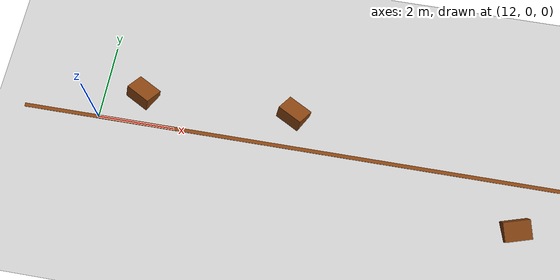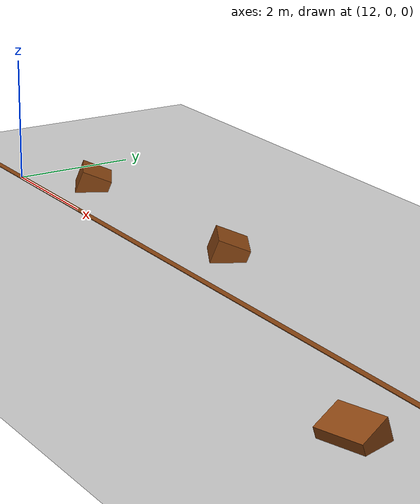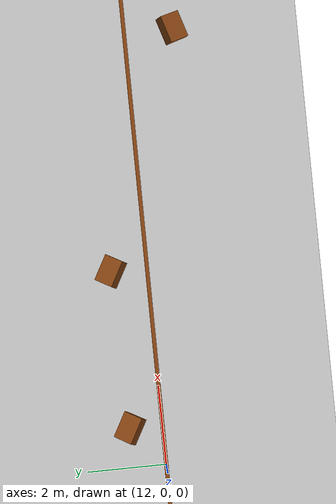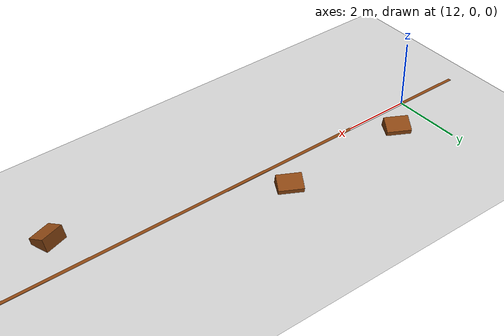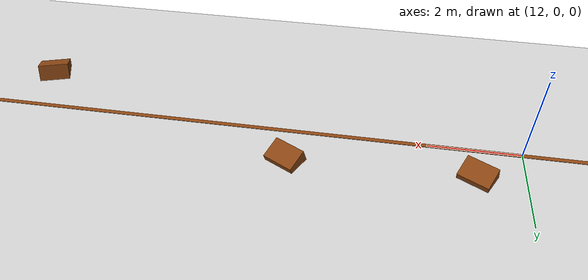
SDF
<sdf version="1.10">
 <world name="land">
  <scene>
   <grid>false</grid>
   <ambient>0.400000006 0.400000006 0.400000006 1</ambient>
   <background>0.699999988 0.699999988 0.699999988 1</background>
   <shadows>true</shadows>
  </scene>
  <physics name="1ms" type="ode">
   <max_step_size>0.0030000000000000001</max_step_size>
   <real_time_update_rate>1000</real_time_update_rate>
   <real_time_factor>1</real_time_factor>
  </physics>
  <plugin name="gz::sim::systems::Physics" filename="gz-sim-physics-system"/>
  <plugin name="gz::sim::systems::UserCommands" filename="gz-sim-user-commands-system"/>
  <plugin name="gz::sim::systems::SceneBroadcaster" filename="gz-sim-scene-broadcaster-system"/>
  <plugin name="gz::sim::systems::Sensors" filename="gz-sim-sensors-system">
   <render_engine>ogre2</render_engine>
  </plugin>
  <plugin name="gz::sim::systems::Imu" filename="gz-sim-imu-system"/>
  <scene>
   <shadows>false</shadows>
   <ambient>0.400000006 0.400000006 0.400000006 1</ambient>
   <background>0.699999988 0.699999988 0.699999988 1</background>
  </scene>
  <physics type="ode">
   <real_time_update_rate>1000</real_time_update_rate>
   <max_step_size>0.001</max_step_size>
   <real_time_factor>1</real_time_factor>
   <ode>
    <solver>
     <type>quick</type>
     <iters>150</iters>
     <precon_iters>0</precon_iters>
     <sor>1.3999999999999999</sor>
     <use_dynamic_moi_rescaling>true</use_dynamic_moi_rescaling>
    </solver>
    <constraints>
     <cfm>1.0000000000000001e-05</cfm>
     <erp>0.20000000000000001</erp>
     <contact_max_correcting_vel>2000</contact_max_correcting_vel>
     <contact_surface_layer>0.01</contact_surface_layer>
    </constraints>
   </ode>
  </physics>
  <gravity>0 0 -9.8000000000000007</gravity>
  <magnetic_field>5.5644999999999998e-06 2.2875799999999999e-05 -4.2388400000000002e-05</magnetic_field>
  <atmosphere type="adiabatic"/>
  <model name="ground_plane">
   <static>true</static>
   <link name="link">
    <collision name="collision">
     <geometry><plane><normal>0 0 1</normal><size>100 100</size></plane></geometry>
     <surface><friction><ode><mu>100</mu><mu2>50</mu2></ode></friction></surface>
    </collision>
    <visual name="visual">
     <geometry><plane><normal>0 0 1</normal><size>100 100</size></plane></geometry>
     <material>
      <ambient>0.800000012 0.800000012 0.800000012 1</ambient>
      <diffuse>0.800000012 0.800000012 0.800000012 1</diffuse>
      <specular>0.800000012 0.800000012 0.800000012 1</specular>
     </material>
    </visual>
    <inertial>
     <mass>1</mass>
     <inertia><ixx>1</ixx><ixy>0</ixy><ixz>0</ixz><iyy>1</iyy><iyz>0</iyz><izz>1</izz></inertia>
    </inertial>
   </link>
  </model>
  <model name="batu1">
   <static>true</static>
   <pose>13 0.80000000000000004 0.01 1.2000000000000002 1.3877787807814457e-16 -0.50000000000000022</pose>
   <link name="link">
    <collision name="collision">
     <geometry><box><size>0.69999999999999996 0.5 0.5</size></box></geometry>
    </collision>
    <visual name="visual">
     <geometry><box><size>0.69999999999999996 0.5 0.5</size></box></geometry>
     <material>
      <ambient>0.540000021 0.270000011 0.0700000003 1</ambient>
      <diffuse>0.540000021 0.270000011 0.0700000003 1</diffuse>
     </material>
    </visual>
    <inertial>
     <mass>1</mass>
     <inertia><ixx>1</ixx><ixy>0</ixy><ixz>0</ixz><iyy>1</iyy><iyz>0</iyz><izz>1</izz></inertia>
    </inertial>
   </link>
  </model>
  <model name="batu2">
   <static>true</static>
   <pose>17 0.90000000000000002 0.01 1.2000000000000002 1.3877787807814457e-16 -0.50000000000000022</pose>
   <link name="link">
    <collision name="collision">
     <geometry><box><size>0.69999999999999996 0.5 0.5</size></box></geometry>
    </collision>
    <visual name="visual">
     <geometry><box><size>0.69999999999999996 0.5 0.5</size></box></geometry>
     <material>
      <ambient>0.540000021 0.270000011 0.0700000003 1</ambient>
      <diffuse>0.540000021 0.270000011 0.0700000003 1</diffuse>
     </material>
    </visual>
    <inertial>
     <mass>1</mass>
     <inertia><ixx>1</ixx><ixy>0</ixy><ixz>0</ixz><iyy>1</iyy><iyz>0</iyz><izz>1</izz></inertia>
    </inertial>
   </link>
  </model>
  <model name="batu3">
   <static>true</static>
   <pose>23 -1.2 0.01 -1.2000000000000004 5.5511151231257827e-17 0.30000000000000004</pose>
   <link name="link">
    <collision name="collision">
     <geometry><box><size>0.69999999999999996 0.5 0.5</size></box></geometry>
    </collision>
    <visual name="visual">
     <geometry><box><size>0.69999999999999996 0.5 0.5</size></box></geometry>
     <material>
      <ambient>0.540000021 0.270000011 0.0700000003 1</ambient>
      <diffuse>0.540000021 0.270000011 0.0700000003 1</diffuse>
     </material>
    </visual>
    <inertial>
     <mass>1</mass>
     <inertia><ixx>1</ixx><ixy>0</ixy><ixz>0</ixz><iyy>1</iyy><iyz>0</iyz><izz>1</izz></inertia>
    </inertial>
   </link>
  </model>
  <model name="garis">
   <static>true</static>
   <pose>25 0 0 0 0 0</pose>
   <link name="link">
    <collision name="collision">
     <geometry><box><size>30 0.10000000000000001 0.01</size></box></geometry>
    </collision>
    <visual name="visual">
     <geometry><box><size>30 0.10000000000000001 0.01</size></box></geometry>
     <material>
      <ambient>0.540000021 0.270000011 0.0700000003 1</ambient>
      <diffuse>0.540000021 0.270000011 0.0700000003 1</diffuse>
     </material>
    </visual>
    <inertial>
     <mass>1</mass>
     <inertia><ixx>1</ixx><ixy>0</ixy><ixz>0</ixz><iyy>1</iyy><iyz>0</iyz><izz>1</izz></inertia>
    </inertial>
   </link>
  </model>
 </world>
</sdf>
